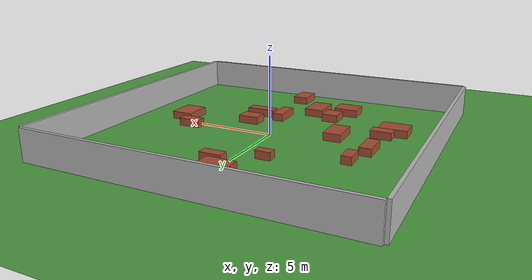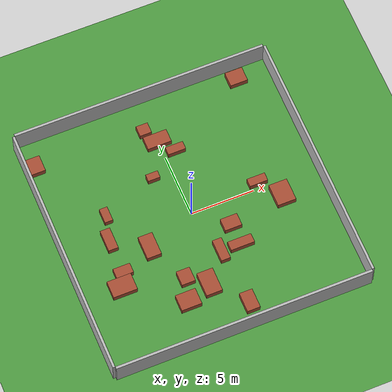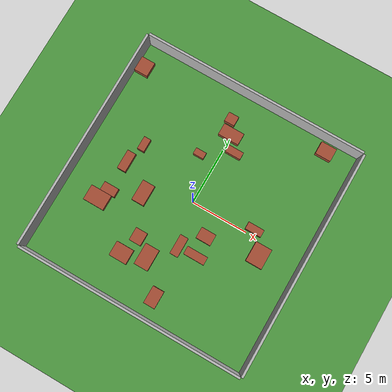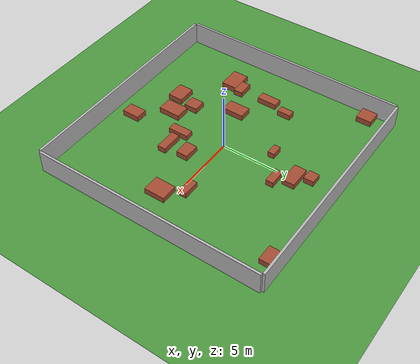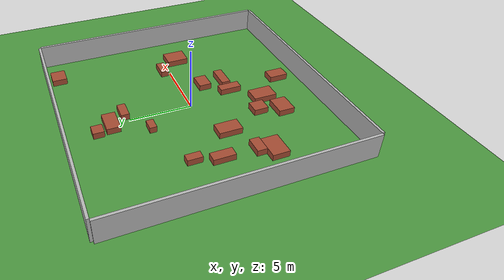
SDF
<?xml version='1.0' encoding='utf-8'?>
<sdf version="1.6"><world name="default"><physics type="ode"><real_time_update_rate>1000</real_time_update_rate><gravity>0 0 -9.81</gravity></physics><model name="ground_plane"><static>true</static><link name="ground_link"><collision name="collision"><geometry><plane><normal>0 0 1</normal><size>20 20</size></plane></geometry></collision><visual name="visual"><geometry><plane><normal>0 0 1</normal><size>20 20</size></plane></geometry><material><script><uri>file://media/materials/scripts/gazebo.material</uri><name>Gazebo/Grass</name></script></material></visual></link></model><model name="wall_north"><static>true</static><pose>0 10.1 1.0 0 0 0</pose><link name="link"><collision name="collision"><geometry><box><size>20 0.2 2.0</size></box></geometry></collision><visual name="visual"><geometry><box><size>20 0.2 2.0</size></box></geometry></visual></link></model><model name="wall_south"><static>true</static><pose>0 -10.1 1.0 0 0 0</pose><link name="link"><collision name="collision"><geometry><box><size>20 0.2 2.0</size></box></geometry></collision><visual name="visual"><geometry><box><size>20 0.2 2.0</size></box></geometry></visual></link></model><model name="wall_east"><static>true</static><pose>10.1 0 1.0 0 0 0</pose><link name="link"><collision name="collision"><geometry><box><size>0.2 20 2.0</size></box></geometry></collision><visual name="visual"><geometry><box><size>0.2 20 2.0</size></box></geometry></visual></link></model><model name="wall_west"><static>true</static><pose>-10.1 0 1.0 0 0 0</pose><link name="link"><collision name="collision"><geometry><box><size>0.2 20 2.0</size></box></geometry></collision><visual name="visual"><geometry><box><size>0.2 20 2.0</size></box></geometry></visual></link></model><include><uri>model://sun</uri></include><model name="box_0"><pose>5.5 0.52 0.25 0 0 0</pose><static>false</static><link name="link"><collision name="collision"><geometry><box><size>1.43 0.65 0.5</size></box></geometry></collision><visual name="visual"><geometry><box><size>1.43 0.65 0.5</size></box></geometry><material><script><uri>file://media/materials/scripts/gazebo.material</uri><name>Gazebo/Bricks</name></script></material></visual></link></model><model name="box_1"><pose>0.84 -3.71 0.25 0 0 0</pose><static>false</static><link name="link"><collision name="collision"><geometry><box><size>0.73 1.76 0.5</size></box></geometry></collision><visual name="visual"><geometry><box><size>0.73 1.76 0.5</size></box></geometry><material><script><uri>file://media/materials/scripts/gazebo.material</uri><name>Gazebo/Bricks</name></script></material></visual></link></model><model name="box_2"><pose>-2.4 -4.72 0.25 0 0 0</pose><static>false</static><link name="link"><collision name="collision"><geometry><box><size>1.06 1.16 0.5</size></box></geometry></collision><visual name="visual"><geometry><box><size>1.06 1.16 0.5</size></box></geometry><material><script><uri>file://media/materials/scripts/gazebo.material</uri><name>Gazebo/Bricks</name></script></material></visual></link></model><model name="box_3"><pose>-5.92 2.12 0.25 0 0 0</pose><static>false</static><link name="link"><collision name="collision"><geometry><box><size>0.63 1.17 0.5</size></box></geometry></collision><visual name="visual"><geometry><box><size>0.63 1.17 0.5</size></box></geometry><material><script><uri>file://media/materials/scripts/gazebo.material</uri><name>Gazebo/Bricks</name></script></material></visual></link></model><model name="box_4"><pose>-9.32 7.92 0.25 0 0 0</pose><static>false</static><link name="link"><collision name="collision"><geometry><box><size>1.24 1.32 0.5</size></box></geometry></collision><visual name="visual"><geometry><box><size>1.24 1.32 0.5</size></box></geometry><material><script><uri>file://media/materials/scripts/gazebo.material</uri><name>Gazebo/Bricks</name></script></material></visual></link></model><model name="box_5"><pose>2.35 -1.95 0.25 0 0 0</pose><static>false</static><link name="link"><collision name="collision"><geometry><box><size>1.34 1.0 0.5</size></box></geometry></collision><visual name="visual"><geometry><box><size>1.34 1.0 0.5</size></box></geometry><material><script><uri>file://media/materials/scripts/gazebo.material</uri><name>Gazebo/Bricks</name></script></material></visual></link></model><model name="box_6"><pose>-0.97 -5.8 0.25 0 0 0</pose><static>false</static><link name="link"><collision name="collision"><geometry><box><size>1.26 1.91 0.5</size></box></geometry></collision><visual name="visual"><geometry><box><size>1.26 1.91 0.5</size></box></geometry><material><script><uri>file://media/materials/scripts/gazebo.material</uri><name>Gazebo/Bricks</name></script></material></visual></link></model><model name="box_7"><pose>-0.69 7.63 0.25 0 0 0</pose><static>false</static><link name="link"><collision name="collision"><geometry><box><size>0.93 0.86 0.5</size></box></geometry></collision><visual name="visual"><geometry><box><size>0.93 0.86 0.5</size></box></geometry><material><script><uri>file://media/materials/scripts/gazebo.material</uri><name>Gazebo/Bricks</name></script></material></visual></link></model><model name="box_8"><pose>-2.92 -6.52 0.25 0 0 0</pose><static>false</static><link name="link"><collision name="collision"><geometry><box><size>1.58 1.3 0.5</size></box></geometry></collision><visual name="visual"><geometry><box><size>1.58 1.3 0.5</size></box></geometry><material><script><uri>file://media/materials/scripts/gazebo.material</uri><name>Gazebo/Bricks</name></script></material></visual></link></model><model name="box_9"><pose>7.45 9.14 0.25 0 0 0</pose><static>false</static><link name="link"><collision name="collision"><geometry><box><size>1.39 1.17 0.5</size></box></geometry></collision><visual name="visual"><geometry><box><size>1.39 1.17 0.5</size></box></geometry><material><script><uri>file://media/materials/scripts/gazebo.material</uri><name>Gazebo/Bricks</name></script></material></visual></link></model><model name="box_10"><pose>1.16 -8.27 0.25 0 0 0</pose><static>false</static><link name="link"><collision name="collision"><geometry><box><size>1.02 1.55 0.5</size></box></geometry></collision><visual name="visual"><geometry><box><size>1.02 1.55 0.5</size></box></geometry><material><script><uri>file://media/materials/scripts/gazebo.material</uri><name>Gazebo/Bricks</name></script></material></visual></link></model><model name="box_11"><pose>0.91 5.28 0.25 0 0 0</pose><static>false</static><link name="link"><collision name="collision"><geometry><box><size>1.4 0.65 0.5</size></box></geometry></collision><visual name="visual"><geometry><box><size>1.4 0.65 0.5</size></box></geometry><material><script><uri>file://media/materials/scripts/gazebo.material</uri><name>Gazebo/Bricks</name></script></material></visual></link></model><model name="box_12"><pose>-1.53 3.76 0.25 0 0 0</pose><static>false</static><link name="link"><collision name="collision"><geometry><box><size>0.96 0.57 0.5</size></box></geometry></collision><visual name="visual"><geometry><box><size>0.96 0.57 0.5</size></box></geometry><material><script><uri>file://media/materials/scripts/gazebo.material</uri><name>Gazebo/Bricks</name></script></material></visual></link></model><model name="box_13"><pose>-6.95 -3.64 0.25 0 0 0</pose><static>false</static><link name="link"><collision name="collision"><geometry><box><size>1.88 1.36 0.5</size></box></geometry></collision><visual name="visual"><geometry><box><size>1.88 1.36 0.5</size></box></geometry><material><script><uri>file://media/materials/scripts/gazebo.material</uri><name>Gazebo/Bricks</name></script></material></visual></link></model><model name="box_14"><pose>-0.08 6.48 0.25 0 0 0</pose><static>false</static><link name="link"><collision name="collision"><geometry><box><size>1.88 1.06 0.5</size></box></geometry></collision><visual name="visual"><geometry><box><size>1.88 1.06 0.5</size></box></geometry><material><script><uri>file://media/materials/scripts/gazebo.material</uri><name>Gazebo/Bricks</name></script></material></visual></link></model><model name="box_15"><pose>-6.45 0.17 0.25 0 0 0</pose><static>false</static><link name="link"><collision name="collision"><geometry><box><size>0.77 1.73 0.5</size></box></geometry></collision><visual name="visual"><geometry><box><size>0.77 1.73 0.5</size></box></geometry><material><script><uri>file://media/materials/scripts/gazebo.material</uri><name>Gazebo/Bricks</name></script></material></visual></link></model><model name="box_16"><pose>6.81 -1.14 0.25 0 0 0</pose><static>false</static><link name="link"><collision name="collision"><geometry><box><size>1.45 1.79 0.5</size></box></geometry></collision><visual name="visual"><geometry><box><size>1.45 1.79 0.5</size></box></geometry><material><script><uri>file://media/materials/scripts/gazebo.material</uri><name>Gazebo/Bricks</name></script></material></visual></link></model><model name="box_17"><pose>-3.89 -1.43 0.25 0 0 0</pose><static>false</static><link name="link"><collision name="collision"><geometry><box><size>1.12 1.86 0.5</size></box></geometry></collision><visual name="visual"><geometry><box><size>1.12 1.86 0.5</size></box></geometry><material><script><uri>file://media/materials/scripts/gazebo.material</uri><name>Gazebo/Bricks</name></script></material></visual></link></model><model name="box_18"><pose>2.4 -3.72 0.25 0 0 0</pose><static>false</static><link name="link"><collision name="collision"><geometry><box><size>1.87 0.72 0.5</size></box></geometry></collision><visual name="visual"><geometry><box><size>1.87 0.72 0.5</size></box></geometry><material><script><uri>file://media/materials/scripts/gazebo.material</uri><name>Gazebo/Bricks</name></script></material></visual></link></model><model name="box_19"><pose>-6.44 -2.57 0.25 0 0 0</pose><static>false</static><link name="link"><collision name="collision"><geometry><box><size>1.33 0.78 0.5</size></box></geometry></collision><visual name="visual"><geometry><box><size>1.33 0.78 0.5</size></box></geometry><material><script><uri>file://media/materials/scripts/gazebo.material</uri><name>Gazebo/Bricks</name></script></material></visual></link></model></world></sdf>
